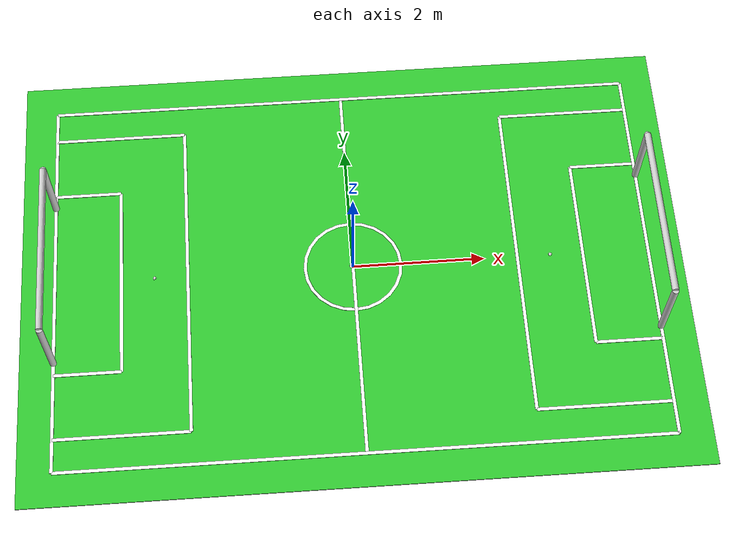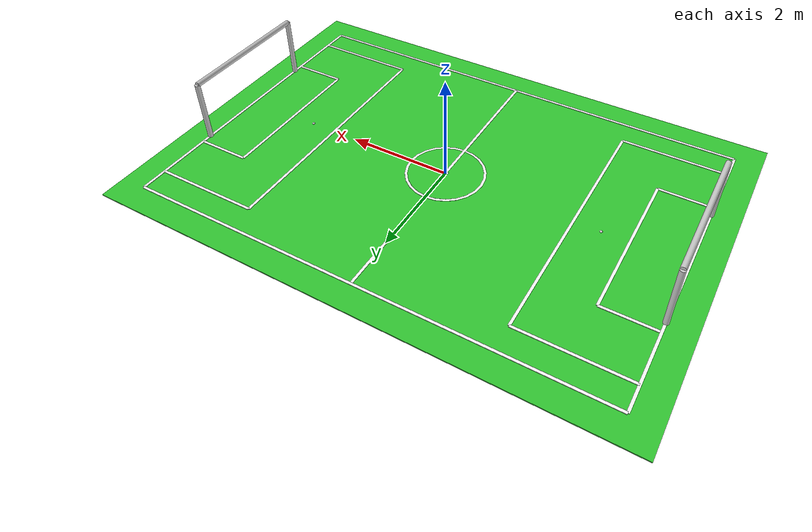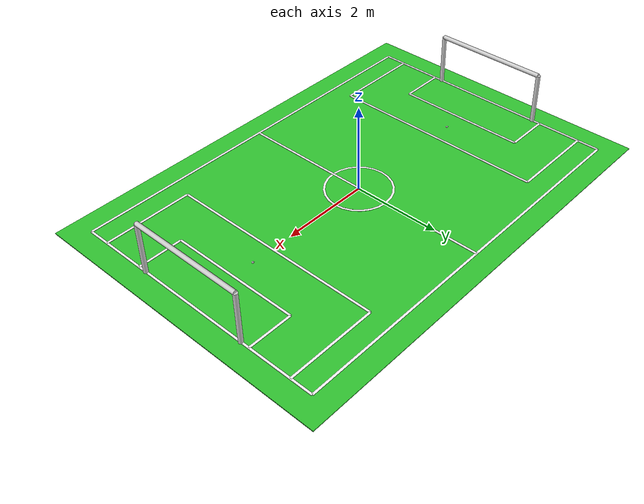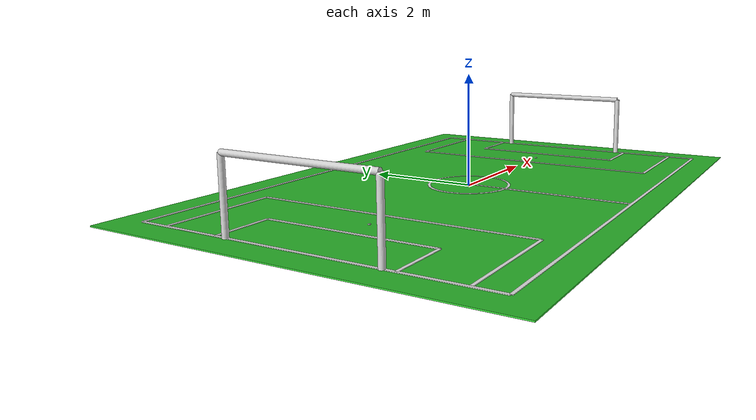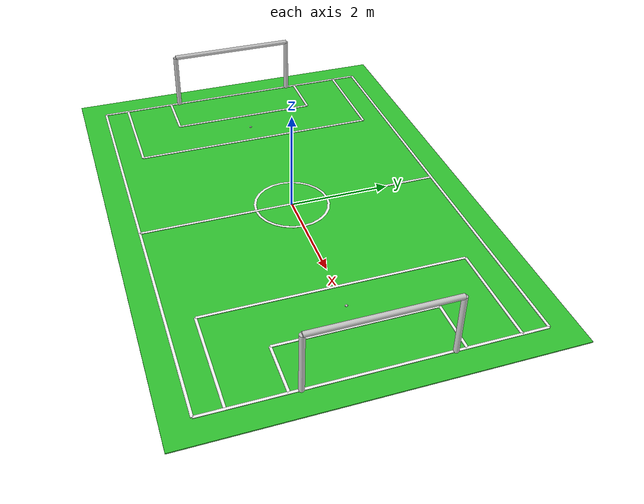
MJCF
<mujoco model="kidsize_soccer_field">

  <asset>
    <material name="soccer_field_mat" rgba="0.2 0.8 0.2 1"/>
    <material name="line_mat" rgba="1 1 1 1"/>
    <material name="goal_mat" rgba="0.8 0.8 0.8 1"/>
  </asset>

  <worldbody>
    <!-- A - Field length (9m), B - Field width (6m) -->
    <geom name="soccer_field" type="box"
          size="5 3.5 0.01" pos="0 0 0"
          material="soccer_field_mat"
          condim="3" friction="0.8 0.1 0.1"/>

    <!-- FIELD LINES (Border strip width: 1m) -->

    <!-- Sidelines (touchlines) -->
    <geom name="sideline_left" type="box"
          size="4.5 0.025 0.005" pos="0 3.0 0.015"
          material="line_mat"/>
    <geom name="sideline_right" type="box"
          size="4.5 0.025 0.005" pos="0 -3.0 0.015"
          material="line_mat"/>

    <!-- Goal lines -->
    <geom name="goal_line_own" type="box"
          size="0.025 3.0 0.005" pos="-4.5 0 0.015"
          material="line_mat"/>
    <geom name="goal_line_opponent" type="box"
          size="0.025 3.0 0.005" pos="4.5 0 0.015"
          material="line_mat"/>

      <!-- Center line -->
      <geom name="center_line" type="box"
            size="0.025 3.0 0.005" pos="0 0 0.015"
            material="line_mat"/>

      <!-- H - Centre circle diameter (1.5m) -->
      <geom name="centre_circle_outer" type="cylinder"
            size="0.75 0.002" pos="0 0 0.015"
            material="line_mat" contype="0" conaffinity="0"/>
      <geom name="centre_circle_inner" type="cylinder"
            size="0.70 0.003" pos="0 0 0.015"
            material="soccer_field_mat" contype="0" conaffinity="0"/>

    <!-- Center mark -->
      <geom name="center mark" type="box"
          size="0.05 0.025 0.005" pos="0.0 0 0.015"
          material="line_mat"/>
    <!-- J - Penalty area length (2m), K - Penalty area width (3m) -->

    <!-- Own penalty area -->
    <geom name="penalty_area_own_top" type="box"
          size="1.0 0.025 0.005" pos="-3.5 2.5 0.015"
          material="line_mat"/>
    <geom name="penalty_area_own_bottom" type="box"
          size="1.0 0.025 0.005" pos="-3.5 -2.5 0.015"
          material="line_mat"/>
    <geom name="penalty_area_own_line" type="box"
          size="0.025 2.5 0.005" pos="-2.5 0 0.015"
          material="line_mat"/>

    <!-- Opponent penalty area -->
    <geom name="penalty_area_opp_top" type="box"
          size="1.0 0.025 0.005" pos="3.5 2.5 0.015"
          material="line_mat"/>
    <geom name="penalty_area_opp_bottom" type="box"
          size="1.0 0.025 0.005" pos="3.5 -2.5 0.015"
          material="line_mat"/>
    <geom name="penalty_area_opp_line" type="box"
          size="0.025 2.5 0.005" pos="2.5 0 0.015"
          material="line_mat"/>

    <!-- I - Penalty mark distance (1.5m) -->
    <geom name="penalty_mark_own_h" type="box"
          size="0.025 0.0125 0.005" pos="-3.0 0 0.015"
          material="line_mat"/>
    <geom name="penalty_mark_own_v" type="box"
          size="0.0125 0.025 0.005" pos="-3.0 0 0.015"
          material="line_mat"/>
    <geom name="penalty_mark_opp_h" type="box"
          size="0.025 0.0125 0.005" pos="3.0 0 0.015"
          material="line_mat"/>
    <geom name="penalty_mark_opp_v" type="box"
          size="0.0125 0.025 0.005" pos="3.0 0 0.015"
          material="line_mat"/>

    <!-- F - Goal area length (1m), G - Goal area width (2m) -->

    <!-- Own goal area -->
    <geom name="goal_area_own_top" type="box"
          size="0.5 0.025 0.005" pos="-4.0 1.5 0.015"
          material="line_mat"/>
    <geom name="goal_area_own_bottom" type="box"
          size="0.5 0.025 0.005" pos="-4.0 -1.5 0.015"
          material="line_mat"/>
    <geom name="goal_area_own_line" type="box"
          size="0.025 1.5 0.005" pos="-3.5 0 0.015"
          material="line_mat"/>

    <!-- Opponent goal area -->
    <geom name="goal_area_opp_top" type="box"
          size="0.5 0.025 0.005" pos="4.0 1.5 0.015"
          material="line_mat"/>
    <geom name="goal_area_opp_bottom" type="box"
          size="0.5 0.025 0.005" pos="4.0 -1.5 0.015"
          material="line_mat"/>
    <geom name="goal_area_opp_line" type="box"
          size="0.025 1.5 0.005" pos="3.5 0 0.015"
          material="line_mat"/>

    <!-- C - Goal depth (0m), D - Goal width (2.6m), E - Goal height (1.2m) -->

    <!-- Own goal -->
    <geom name="goal_post_own_left" type="cylinder"
          size="0.05 0.6" pos="-4.5 1.3 0.6"
          material="goal_mat"/>
    <geom name="goal_post_own_right" type="cylinder"
          size="0.05 0.6" pos="-4.5 -1.3 0.6"
          material="goal_mat"/>
    <geom name="goal_crossbar_own" type="cylinder"
          size="0.05" fromto="-4.5 -1.3 1.2 -4.5 1.3 1.2"
          material="goal_mat"/>

    <!-- Opponent goal -->
    <geom name="goal_post_opp_left" type="cylinder"
          size="0.05 0.6" pos="4.5 1.3 0.6"
          material="goal_mat"/>
    <geom name="goal_post_opp_right" type="cylinder"
          size="0.05 0.6" pos="4.5 -1.3 0.6"
          material="goal_mat"/>
    <geom name="goal_crossbar_opp" type="cylinder"
          size="0.05" fromto="4.5 -1.3 1.2 4.5 1.3 1.2"
          material="goal_mat"/>

  </worldbody>

</mujoco>
